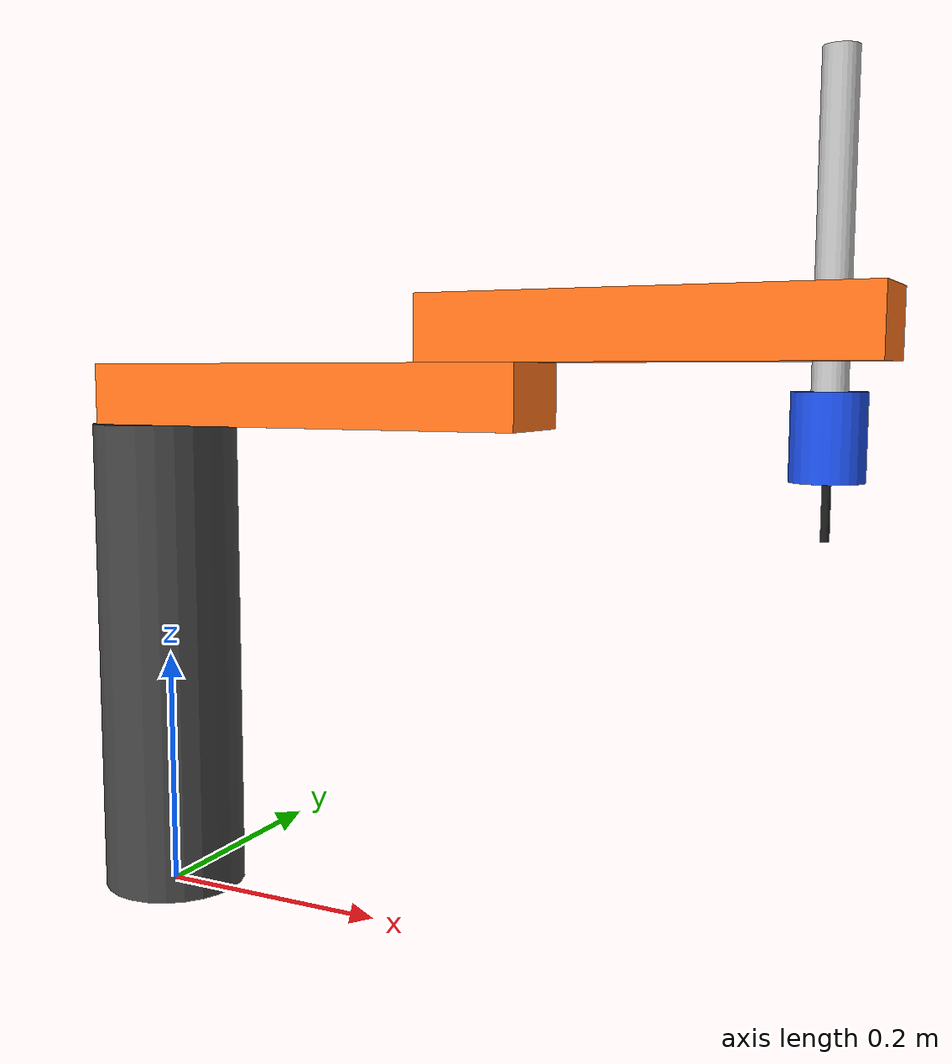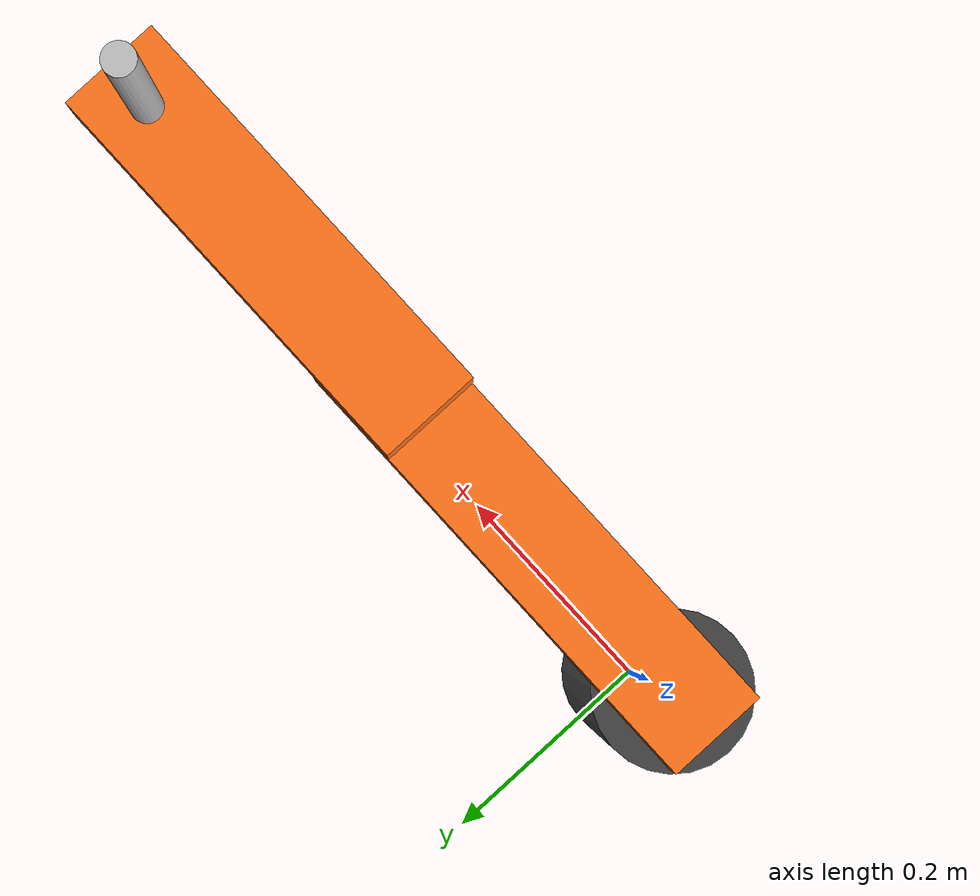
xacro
<?xml version="1.0"?>
<!-- SCARA drilling arm: a column, two arm links that swing around vertical axes (j1, j2)
     and a quill that slides the drill straight down (j3). -->
<robot name="scara" xmlns:xacro="http://www.ros.org/wiki/xacro">

  <xacro:property name="column_height" value="0.40"/>
  <xacro:property name="l1" value="0.30"/>  <!-- shoulder (j1) to elbow (j2) -->
  <xacro:property name="l2" value="0.25"/>  <!-- elbow (j2) to drill axis (j3) -->
  <xacro:property name="arm_width" value="0.08"/>
  <xacro:property name="arm_thickness" value="0.05"/>
  <xacro:property name="tip_below_quill" value="0.12"/>  <!-- drill tip under the end of link 2 -->

  <!-- Working range: j1 ±150°, j2 ±145°, j3 0 to 0.15 m. The end stops (joint limits) sit a bit
       further out, because in Gazebo a motor can't drive a joint back off an end stop it has hit. -->

  <!-- Inertia of a solid box / upright cylinder (physics needs mass and inertia on every link) -->
  <xacro:macro name="box_inertia" params="m x y z xyz">
    <inertial>
      <origin xyz="${xyz}"/>
      <mass value="${m}"/>
      <inertia ixx="${m*(y*y+z*z)/12}" iyy="${m*(x*x+z*z)/12}" izz="${m*(x*x+y*y)/12}"
               ixy="0" ixz="0" iyz="0"/>
    </inertial>
  </xacro:macro>

  <xacro:macro name="cylinder_inertia" params="m r h xyz">
    <inertial>
      <origin xyz="${xyz}"/>
      <mass value="${m}"/>
      <inertia ixx="${m*(3*r*r+h*h)/12}" iyy="${m*(3*r*r+h*h)/12}" izz="${m*r*r/2}"
               ixy="0" ixz="0" iyz="0"/>
    </inertial>
  </xacro:macro>

  <!-- "world" + a fixed joint bolts the robot to the ground, so Gazebo doesn't let it fall over -->
  <link name="world"/>

  <joint name="world_joint" type="fixed">
    <parent link="world"/>
    <child link="base_link"/>
  </joint>

  <!-- Base column, 0.40 m tall -->
  <link name="base_link">
    <visual>
      <origin xyz="0 0 ${column_height/2}"/>
      <geometry><cylinder radius="0.06" length="${column_height}"/></geometry>
      <material name="dark_grey"><color rgba="0.25 0.25 0.25 1"/></material>
    </visual>
    <collision>
      <origin xyz="0 0 ${column_height/2}"/>
      <geometry><cylinder radius="0.06" length="${column_height}"/></geometry>
    </collision>
    <xacro:cylinder_inertia m="5.0" r="0.06" h="${column_height}" xyz="0 0 ${column_height/2}"/>
  </link>

  <!-- j1 shoulder: on top of the column, turns link 1 around the vertical axis -->
  <joint name="j1" type="revolute">
    <parent link="base_link"/>
    <child link="link1"/>
    <origin xyz="0 0 ${column_height}"/>
    <axis xyz="0 0 1"/>
    <limit lower="${radians(-155)}" upper="${radians(155)}" effort="50" velocity="2"/>
  </joint>

  <!-- Link 1. The box is a bit longer than l1 so its ends cover both joints. -->
  <link name="link1">
    <visual>
      <origin xyz="${l1/2} 0 ${arm_thickness/2}"/>
      <geometry><box size="${l1 + arm_width} ${arm_width} ${arm_thickness}"/></geometry>
      <material name="orange"><color rgba="1 0.45 0.1 1"/></material>
    </visual>
    <collision>
      <origin xyz="${l1/2} 0 ${arm_thickness/2}"/>
      <geometry><box size="${l1 + arm_width} ${arm_width} ${arm_thickness}"/></geometry>
    </collision>
    <xacro:box_inertia m="2.0" x="${l1 + arm_width}" y="${arm_width}" z="${arm_thickness}"
                       xyz="${l1/2} 0 ${arm_thickness/2}"/>
  </link>

  <!-- j2 elbow: at the end of link 1; link 2 sits on top of link 1 -->
  <joint name="j2" type="revolute">
    <parent link="link1"/>
    <child link="link2"/>
    <origin xyz="${l1} 0 ${arm_thickness}"/>
    <axis xyz="0 0 1"/>
    <limit lower="${radians(-150)}" upper="${radians(150)}" effort="50" velocity="2"/>
  </joint>

  <link name="link2">
    <visual>
      <origin xyz="${l2/2} 0 ${arm_thickness/2}"/>
      <geometry><box size="${l2 + arm_width} ${arm_width} ${arm_thickness}"/></geometry>
      <material name="orange"><color rgba="1 0.45 0.1 1"/></material>
    </visual>
    <collision>
      <origin xyz="${l2/2} 0 ${arm_thickness/2}"/>
      <geometry><box size="${l2 + arm_width} ${arm_width} ${arm_thickness}"/></geometry>
    </collision>
    <xacro:box_inertia m="1.5" x="${l2 + arm_width}" y="${arm_width}" z="${arm_thickness}"
                       xyz="${l2/2} 0 ${arm_thickness/2}"/>
  </link>

  <!-- j3 quill: at the end of link 2, slides straight down (axis -z) -->
  <joint name="j3" type="prismatic">
    <parent link="link2"/>
    <child link="quill"/>
    <origin xyz="${l2} 0 0"/>
    <axis xyz="0 0 -1"/>
    <limit lower="-0.005" upper="0.155" effort="100" velocity="0.5"/>
  </joint>

  <!-- Quill: a shaft through link 2, the spindle motor and the drill bit.
       No collision shapes: Gazebo can't cut, so the drill must pass through the sheet. -->
  <link name="quill">
    <visual>
      <origin xyz="0 0 0.09"/>
      <geometry><cylinder radius="0.012" length="0.22"/></geometry>
      <material name="silver"><color rgba="0.75 0.75 0.75 1"/></material>
    </visual>
    <visual>
      <origin xyz="0 0 -0.05"/>
      <geometry><cylinder radius="0.025" length="0.06"/></geometry>
      <material name="blue"><color rgba="0.1 0.3 0.9 1"/></material>
    </visual>
    <visual>
      <origin xyz="0 0 -0.10"/>
      <geometry><cylinder radius="0.003" length="0.04"/></geometry>  <!-- 6 mm drill bit -->
      <material name="black"><color rgba="0.1 0.1 0.1 1"/></material>
    </visual>
    <xacro:cylinder_inertia m="0.5" r="0.025" h="0.32" xyz="0 0 0.04"/>
  </link>

  <!-- drill_tip: the point of the bit. With all joints at 0 it is at x 0.55, y 0, z 0.33. -->
  <link name="drill_tip"/>

  <joint name="drill_tip_joint" type="fixed">
    <parent link="quill"/>
    <child link="drill_tip"/>
    <origin xyz="0 0 ${-tip_below_quill}"/>
  </joint>

  <!-- ===== Gazebo ===== -->

  <xacro:macro name="motor" params="joint speed">
    <plugin filename="gz-sim-joint-position-controller-system"
            name="gz::sim::systems::JointPositionController">
      <joint_name>${joint}</joint_name>
      <topic>scara/${joint}_cmd</topic>
      <use_velocity_commands>true</use_velocity_commands>
      <cmd_max>${speed}</cmd_max>
    </plugin>
  </xacro:macro>

  <gazebo>
    <xacro:motor joint="j1" speed="1.0"/>  <!-- rad/s -->
    <xacro:motor joint="j2" speed="1.0"/>  <!-- rad/s -->
    <xacro:motor joint="j3" speed="0.1"/>

    <!-- Publishes the joint positions on /joint_states -->
    <plugin filename="gz-sim-joint-state-publisher-system" name="gz::sim::systems::JointStatePublisher">
      <joint_name>j1</joint_name>
      <joint_name>j2</joint_name>
      <joint_name>j3</joint_name>
      <topic>joint_states</topic>
      <update_rate>50</update_rate>
    </plugin>
  </gazebo>

</robot>
